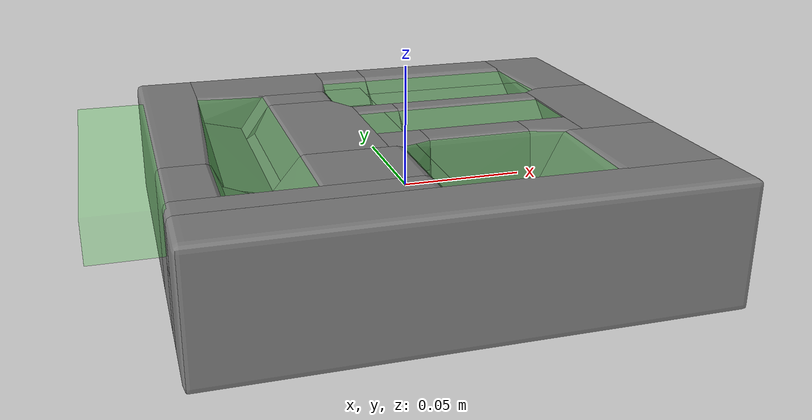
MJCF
<mujoco model="cosmetics_inlay_d">
  <default>
    <default class="visual">
      <geom group="1" type="mesh" contype="0" conaffinity="0" />
    </default>
    <default class="collision">
      <geom group="0" type="mesh" />
    </default>
  </default>
  <asset>
    <mesh file="cosmetics_inlay_d.obj" name="cosmetics_inlay_d" />
    <mesh file="cosmetics_inlay_d_collision_0.obj" name="cosmetics_inlay_d_collision_0" />
    <mesh file="cosmetics_inlay_d_collision_1.obj" name="cosmetics_inlay_d_collision_1" />
    <mesh file="cosmetics_inlay_d_collision_2.obj" name="cosmetics_inlay_d_collision_2" />
    <mesh file="cosmetics_inlay_d_collision_3.obj" name="cosmetics_inlay_d_collision_3" />
    <mesh file="cosmetics_inlay_d_collision_4.obj" name="cosmetics_inlay_d_collision_4" />
    <mesh file="cosmetics_inlay_d_collision_5.obj" name="cosmetics_inlay_d_collision_5" />
    <mesh file="cosmetics_inlay_d_collision_6.obj" name="cosmetics_inlay_d_collision_6" />
    <mesh file="cosmetics_inlay_d_collision_7.obj" name="cosmetics_inlay_d_collision_7" />
    <mesh file="cosmetics_inlay_d_collision_8.obj" name="cosmetics_inlay_d_collision_8" />
    <mesh file="cosmetics_inlay_d_collision_9.obj" name="cosmetics_inlay_d_collision_9" />
    <mesh file="cosmetics_inlay_d_collision_10.obj" name="cosmetics_inlay_d_collision_10" />
    <mesh file="cosmetics_inlay_d_collision_11.obj" name="cosmetics_inlay_d_collision_11" />
    <mesh file="cosmetics_inlay_d_collision_12.obj" name="cosmetics_inlay_d_collision_12" />
    <mesh file="cosmetics_inlay_d_collision_13.obj" name="cosmetics_inlay_d_collision_13" />
    <mesh file="cosmetics_inlay_d_collision_14.obj" name="cosmetics_inlay_d_collision_14" />
    <mesh file="cosmetics_inlay_d_collision_15.obj" name="cosmetics_inlay_d_collision_15" />
    <mesh file="cosmetics_inlay_d_collision_16.obj" name="cosmetics_inlay_d_collision_16" />
    <mesh file="cosmetics_inlay_d_collision_17.obj" name="cosmetics_inlay_d_collision_17" />
    <mesh file="cosmetics_inlay_d_collision_18.obj" name="cosmetics_inlay_d_collision_18" />
    <mesh file="cosmetics_inlay_d_collision_19.obj" name="cosmetics_inlay_d_collision_19" />
    <mesh file="cosmetics_inlay_d_collision_20.obj" name="cosmetics_inlay_d_collision_20" />
    <mesh file="cosmetics_inlay_d_collision_21.obj" name="cosmetics_inlay_d_collision_21" />
    <mesh file="cosmetics_inlay_d_collision_22.obj" name="cosmetics_inlay_d_collision_22" />
    <mesh file="cosmetics_inlay_d_collision_23.obj" name="cosmetics_inlay_d_collision_23" />
    <mesh file="cosmetics_inlay_d_collision_24.obj" name="cosmetics_inlay_d_collision_24" />
    <mesh file="cosmetics_inlay_d_collision_25.obj" name="cosmetics_inlay_d_collision_25" />
  </asset>
  <worldbody>
    <body>
      <body name="object" pos="0 0 0" quat="1 0 0 0">
        <body name="cosmetics_inlay_d" pos="0 0 0" quat="1 0 0 0">
          <inertial pos="0 0 0" mass="0.5" diaginertia="1e-3 1e-3 1e-3" />
          <geom type="mesh" mesh="cosmetics_inlay_d" group="1" quat="1 0 0 0" rgba="0.8 0.8 0.8 1" contype="0" conaffinity="0" />
          <geom type="mesh" mesh="cosmetics_inlay_d_collision_0" group="0" quat="1 0 0 0" />
          <geom type="mesh" mesh="cosmetics_inlay_d_collision_1" group="0" quat="1 0 0 0" />
          <geom type="mesh" mesh="cosmetics_inlay_d_collision_2" group="0" quat="1 0 0 0" />
          <geom type="mesh" mesh="cosmetics_inlay_d_collision_3" group="0" quat="1 0 0 0" />
          <geom type="mesh" mesh="cosmetics_inlay_d_collision_4" group="0" quat="1 0 0 0" />
          <geom type="mesh" mesh="cosmetics_inlay_d_collision_5" group="0" quat="1 0 0 0" />
          <geom type="mesh" mesh="cosmetics_inlay_d_collision_6" group="0" quat="1 0 0 0" />
          <geom type="mesh" mesh="cosmetics_inlay_d_collision_7" group="0" quat="1 0 0 0" />
          <geom type="mesh" mesh="cosmetics_inlay_d_collision_8" group="0" quat="1 0 0 0" />
          <geom type="mesh" mesh="cosmetics_inlay_d_collision_9" group="0" quat="1 0 0 0" />
          <geom type="mesh" mesh="cosmetics_inlay_d_collision_10" group="0" quat="1 0 0 0" />
          <geom type="mesh" mesh="cosmetics_inlay_d_collision_11" group="0" quat="1 0 0 0" />
          <geom type="mesh" mesh="cosmetics_inlay_d_collision_12" group="0" quat="1 0 0 0" />
          <geom type="mesh" mesh="cosmetics_inlay_d_collision_13" group="0" quat="1 0 0 0" />
          <geom type="mesh" mesh="cosmetics_inlay_d_collision_14" group="0" quat="1 0 0 0" />
          <geom type="mesh" mesh="cosmetics_inlay_d_collision_15" group="0" quat="1 0 0 0" />
          <geom type="mesh" mesh="cosmetics_inlay_d_collision_16" group="0" quat="1 0 0 0" />
          <geom type="mesh" mesh="cosmetics_inlay_d_collision_17" group="0" quat="1 0 0 0" />
          <geom type="mesh" mesh="cosmetics_inlay_d_collision_18" group="0" quat="1 0 0 0" />
          <geom type="mesh" mesh="cosmetics_inlay_d_collision_19" group="0" quat="1 0 0 0" />
          <geom type="mesh" mesh="cosmetics_inlay_d_collision_20" group="0" quat="1 0 0 0" />
          <geom type="mesh" mesh="cosmetics_inlay_d_collision_21" group="0" quat="1 0 0 0" />
          <geom type="mesh" mesh="cosmetics_inlay_d_collision_22" group="0" quat="1 0 0 0" />
          <geom type="mesh" mesh="cosmetics_inlay_d_collision_23" group="0" quat="1 0 0 0" />
          <geom type="mesh" mesh="cosmetics_inlay_d_collision_24" group="0" quat="1 0 0 0" />
          <geom type="mesh" mesh="cosmetics_inlay_d_collision_25" group="0" quat="1 0 0 0" />
          <site name="goal_point_cream_bottle" type="sphere" size="0.003" pos="0.026151 0.026151 0.012556" quat="1 0 0 0" rgba="1 0 0 0.8" group="0" />
          <site name="goal_area_cream_bottle" type="box" size="0.046410 0.046410 0.006222" pos="0.026151 0.026151 0.018778" quat="1 0 0 0" rgba="0 1 0 0.2" group="0" />
          <site name="goal_point_jar" type="sphere" size="0.003" pos="0.025076 -0.045993 -0.009068" quat="1 0 0 0" rgba="1 0 0 0.8" group="0" />
          <site name="goal_area_cream_jar" type="box" size="0.034068 0.034068 0.017034" pos="0.025076 -0.045993 0.007966" quat="1 0 0 0" rgba="0 1 0 0.2" group="0" />
          <site name="goal_point_pump_bottle" type="sphere" size="0.003" pos="-0.065 0 0.008323" quat="1 0 0 0" rgba="1 0 0 0.8" group="0" />
          <site name="goal_area_pump_bottle" type="box" size="0.062220 0.062220 0.008339" pos="-0.065 0 0.016662" quat="1 0 0 0" rgba="0 1 0 0.2" group="0" />
          <site name="goal_point_serum_bottle" type="sphere" size="0.003" pos="0.027063 0.007534 0.011077" quat="1 0 0 0" rgba="1 0 0 0.8" group="0" />
          <site name="goal_area_serum_bottle" type="box" size="0.043146 0.043146 0.006961" pos="0.027063 0.007534 0.018039" quat="1 0 0 0" rgba="0 1 0 0.2" group="0" />
        </body>
      </body>
      <site name="bottom_site" pos="0 0 -0.0245" size="0.01" rgba="0 0 0 0" quat="1 0 0 0" />
      <site name="top_site" pos="0 0 0.0245" size="0.01" rgba="0 0 0 0" quat="1 0 0 0" />
      <site name="horizontal_radius_site" pos="0.1 0.0935 0" size="0.01" rgba="0 0 0 0" quat="1 0 0 0" />
    </body>
  </worldbody>
</mujoco>
